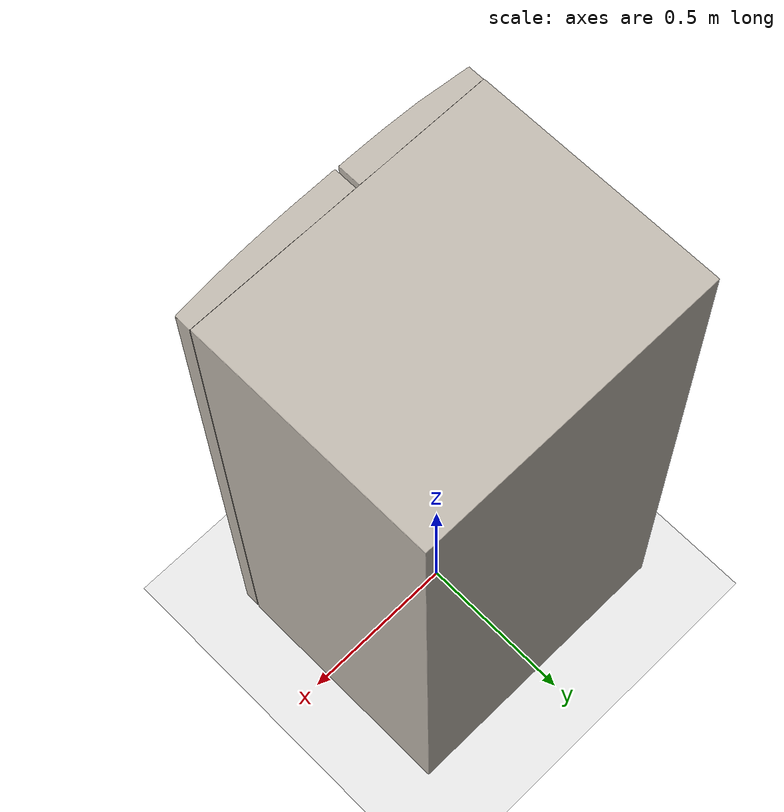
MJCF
<mujoco model="Refrigerator031">
  <compiler
    angle="radian"
    assetdir="../../examples/mujoco_models/Refrigerator031_obj"
    texturedir="../../Lightwheel/Refrigerator031/texture"
  />

  <visual>
    <global offwidth="1024" offheight="1024" />
  </visual>

  <asset>
    <texture name="T_Refrigerator031_BC001" type="2d" file="T_Refrigerator031_BC001.png" />
    <material
      name="material_0"
      texture="T_Refrigerator031_BC001"
      rgba="1 1 1 1"
      texuniform="false"
      texrepeat="1 1"
      specular="0"
      reflectance="0"
      shininess="0"
    />
    <texture name="T_Refrigerator031_ORM001" type="2d" file="T_Refrigerator031_ORM001.png" />
    <material
      name="material_1"
      texture="T_Refrigerator031_ORM001"
      rgba="1 1 1 1"
      texuniform="false"
      texrepeat="1 1"
      specular="0"
      reflectance="0"
      shininess="0"
    />
    <mesh name="Refrigerator031_Body001_Clear" file="Refrigerator031_Body001_Clear.obj" />
    <mesh name="Refrigerator031_Body001" file="Refrigerator031_Body001.obj" />
    <mesh name="Refrigerator031_freezer_door" file="Refrigerator031_freezer_door.obj" />
    <mesh name="Refrigerator031_freezer_drawer0" file="Refrigerator031_freezer_drawer0.obj" />
    <mesh name="Refrigerator031_freezer_drawer1" file="Refrigerator031_freezer_drawer1.obj" />
    <mesh name="Refrigerator031_fridge_door_Clear" file="Refrigerator031_fridge_door_Clear.obj" />
    <mesh name="Refrigerator031_fridge_door" file="Refrigerator031_fridge_door.obj" />
    <mesh name="Refrigerator031_fridge_drawer0" file="Refrigerator031_fridge_drawer0.obj" />
    <mesh name="Refrigerator031_fridge_drawer1" file="Refrigerator031_fridge_drawer1.obj" />
  </asset>

  <worldbody>
    <geom name="ground" type="plane" size="5 5 0.1" rgba="0.9 0.9 0.9 1" />
    <light pos="0 0 3" dir="0 0 -1" diffuse="0.7 0.7 0.7" specular="0.3 0.3 0.3" />
    <light pos="2 2 2" dir="-1 -1 -1" diffuse="0.6 0.6 0.6" specular="0.2 0.2 0.2" />

    <!-- Main object body -->
    <body name="Refrigerator031" pos="0 0 0.946877">
    <inertial pos="0 0 0" quat="1 0 0 0" mass="57.640775" diaginertia="1 1 1" />

      <geom type="mesh" mesh="Refrigerator031_Body001_Clear" material="material_0" />
      <geom type="mesh" mesh="Refrigerator031_Body001" material="material_0" />

      <body name="Refrigerator031_freezer_door" pos="0 0 0">
        <joint
          name="freezer_door_joint"
          type="hinge"
          axis="0.000000 0.000000 -1.000000"
          pos="-0.413870 -0.350109 0.001723"
          damping="1.0"
          limited="true"
          range="0.000000 1.570796"
        />
        <geom type="mesh" mesh="Refrigerator031_freezer_door" material="material_0" />
      </body>
      <body name="Refrigerator031_freezer_drawer0" pos="0 0 0">
        <joint
          name="freezer_drawer0_joint"
          type="slide"
          axis="0.000000 -1.000000 0.000000"
          pos="-0.232655 -0.017051 -0.755172"
          damping="1.0"
          limited="true"
          range="0.000000 0.380000"
        />
        <geom type="mesh" mesh="Refrigerator031_freezer_drawer0" material="material_0" />
      </body>
      <body name="Refrigerator031_freezer_drawer1" pos="0 0 0">
        <joint
          name="freezer_drawer1_joint"
          type="slide"
          axis="0.000000 -1.000000 0.000000"
          pos="-0.232655 -0.017051 -0.359806"
          damping="1.0"
          limited="true"
          range="0.000000 0.380000"
        />
        <geom type="mesh" mesh="Refrigerator031_freezer_drawer1" material="material_0" />
      </body>
      <body name="Refrigerator031_fridge_door" pos="0 0 0">
        <joint
          name="fridge_door_joint"
          type="hinge"
          axis="0.000000 0.000000 1.000000"
          pos="0.413762 -0.347951 0.002113"
          damping="1.0"
          limited="true"
          range="0.000000 1.570796"
        />
        <geom type="mesh" mesh="Refrigerator031_fridge_door_Clear" material="material_0" />
        <geom type="mesh" mesh="Refrigerator031_fridge_door" material="material_0" />
      </body>
      <body name="Refrigerator031_fridge_drawer0" pos="0 0 0">
        <joint
          name="fridge_drawer0_joint"
          type="slide"
          axis="0.000000 -1.000000 0.000000"
          pos="0.173050 -0.010061 -0.736732"
          damping="1.0"
          limited="true"
          range="0.000000 0.380000"
        />
        <geom type="mesh" mesh="Refrigerator031_fridge_drawer0" material="material_0" />
      </body>
      <body name="Refrigerator031_fridge_drawer1" pos="0 0 0">
        <joint
          name="fridge_drawer1_joint"
          type="slide"
          axis="0.000000 -1.000000 0.000000"
          pos="0.173050 -0.010061 -0.342444"
          damping="1.0"
          limited="true"
          range="0.000000 0.380000"
        />
        <geom type="mesh" mesh="Refrigerator031_fridge_drawer1" material="material_0" />
      </body>
    </body>
  </worldbody>
</mujoco>
